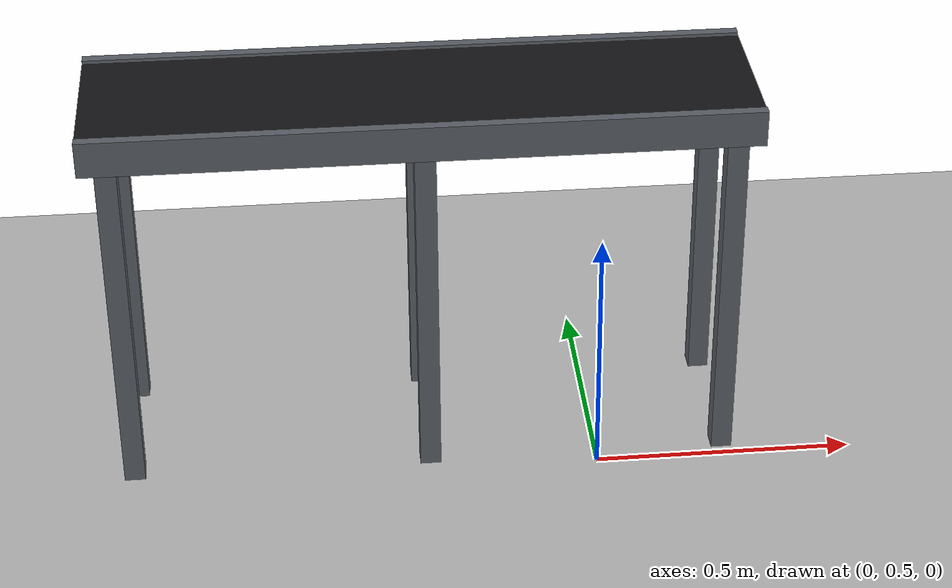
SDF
<sdf version="1.8">
 <world name="moz1_jerrycan">
  <model name="ground_plane">
   <static>true</static>
   <link name="link">
    <collision name="c"><geometry><plane><normal>0 0 1</normal><size>100 100</size></plane></geometry></collision>
    <visual name="v">
     <geometry><plane><normal>0 0 1</normal><size>100 100</size></plane></geometry>
     <material><ambient>0.7 0.7 0.7 1</ambient><diffuse>0.7 0.7 0.7 1</diffuse></material>
    </visual>
   </link>
  </model>
  <model name="conveyor_left">
   <static>true</static>
   <pose>-0.3250 0.6800 0.0000 0 0 0</pose>
   <link name="link">
    <collision name="c">
     <pose>0.0000 0.0000 0.3750 0 0 0</pose>
     <geometry><box><size>1.2500 0.3400 0.7500</size></box></geometry>
    </collision>
    <visual name="belt">
     <pose>0.0000 0.0000 0.7450 0 0 0</pose>
     <geometry><box><size>1.2500 0.3000 0.0100</size></box></geometry>
     <material><ambient>0.08 0.08 0.09 1</ambient><diffuse>0.08 0.08 0.09 1</diffuse></material>
    </visual>
    <visual name="rail_a">
     <pose>0.0000 0.1600 0.7200 0 0 0</pose>
     <geometry><box><size>1.2500 0.0200 0.0700</size></box></geometry>
     <material><ambient>0.35 0.37 0.40 1</ambient><diffuse>0.35 0.37 0.40 1</diffuse></material>
    </visual>
    <visual name="rail_b">
     <pose>0.0000 -0.1600 0.7200 0 0 0</pose>
     <geometry><box><size>1.2500 0.0200 0.0700</size></box></geometry>
     <material><ambient>0.35 0.37 0.40 1</ambient><diffuse>0.35 0.37 0.40 1</diffuse></material>
    </visual>
    <visual name="roller0">
     <pose>-0.5850 0.0000 0.7150 1.5708 0 0</pose>
     <geometry><cylinder><radius>0.02</radius><length>0.320</length></cylinder></geometry>
     <material><ambient>0.7 0.7 0.72 1</ambient><diffuse>0.7 0.7 0.72 1</diffuse></material>
    </visual>
    <visual name="roller1">
     <pose>-0.5050 0.0000 0.7150 1.5708 0 0</pose>
     <geometry><cylinder><radius>0.02</radius><length>0.320</length></cylinder></geometry>
     <material><ambient>0.7 0.7 0.72 1</ambient><diffuse>0.7 0.7 0.72 1</diffuse></material>
    </visual>
    <visual name="roller2">
     <pose>-0.4250 0.0000 0.7150 1.5708 0 0</pose>
     <geometry><cylinder><radius>0.02</radius><length>0.320</length></cylinder></geometry>
     <material><ambient>0.7 0.7 0.72 1</ambient><diffuse>0.7 0.7 0.72 1</diffuse></material>
    </visual>
    <visual name="roller3">
     <pose>-0.3450 0.0000 0.7150 1.5708 0 0</pose>
     <geometry><cylinder><radius>0.02</radius><length>0.320</length></cylinder></geometry>
     <material><ambient>0.7 0.7 0.72 1</ambient><diffuse>0.7 0.7 0.72 1</diffuse></material>
    </visual>
    <visual name="roller4">
     <pose>-0.2650 0.0000 0.7150 1.5708 0 0</pose>
     <geometry><cylinder><radius>0.02</radius><length>0.320</length></cylinder></geometry>
     <material><ambient>0.7 0.7 0.72 1</ambient><diffuse>0.7 0.7 0.72 1</diffuse></material>
    </visual>
    <visual name="roller5">
     <pose>-0.1850 0.0000 0.7150 1.5708 0 0</pose>
     <geometry><cylinder><radius>0.02</radius><length>0.320</length></cylinder></geometry>
     <material><ambient>0.7 0.7 0.72 1</ambient><diffuse>0.7 0.7 0.72 1</diffuse></material>
    </visual>
    <visual name="roller6">
     <pose>-0.1050 0.0000 0.7150 1.5708 0 0</pose>
     <geometry><cylinder><radius>0.02</radius><length>0.320</length></cylinder></geometry>
     <material><ambient>0.7 0.7 0.72 1</ambient><diffuse>0.7 0.7 0.72 1</diffuse></material>
    </visual>
    <visual name="roller7">
     <pose>-0.0250 0.0000 0.7150 1.5708 0 0</pose>
     <geometry><cylinder><radius>0.02</radius><length>0.320</length></cylinder></geometry>
     <material><ambient>0.7 0.7 0.72 1</ambient><diffuse>0.7 0.7 0.72 1</diffuse></material>
    </visual>
    <visual name="roller8">
     <pose>0.0550 0.0000 0.7150 1.5708 0 0</pose>
     <geometry><cylinder><radius>0.02</radius><length>0.320</length></cylinder></geometry>
     <material><ambient>0.7 0.7 0.72 1</ambient><diffuse>0.7 0.7 0.72 1</diffuse></material>
    </visual>
    <visual name="roller9">
     <pose>0.1350 0.0000 0.7150 1.5708 0 0</pose>
     <geometry><cylinder><radius>0.02</radius><length>0.320</length></cylinder></geometry>
     <material><ambient>0.7 0.7 0.72 1</ambient><diffuse>0.7 0.7 0.72 1</diffuse></material>
    </visual>
    <visual name="roller10">
     <pose>0.2150 0.0000 0.7150 1.5708 0 0</pose>
     <geometry><cylinder><radius>0.02</radius><length>0.320</length></cylinder></geometry>
     <material><ambient>0.7 0.7 0.72 1</ambient><diffuse>0.7 0.7 0.72 1</diffuse></material>
    </visual>
    <visual name="roller11">
     <pose>0.2950 0.0000 0.7150 1.5708 0 0</pose>
     <geometry><cylinder><radius>0.02</radius><length>0.320</length></cylinder></geometry>
     <material><ambient>0.7 0.7 0.72 1</ambient><diffuse>0.7 0.7 0.72 1</diffuse></material>
    </visual>
    <visual name="roller12">
     <pose>0.3750 0.0000 0.7150 1.5708 0 0</pose>
     <geometry><cylinder><radius>0.02</radius><length>0.320</length></cylinder></geometry>
     <material><ambient>0.7 0.7 0.72 1</ambient><diffuse>0.7 0.7 0.72 1</diffuse></material>
    </visual>
    <visual name="roller13">
     <pose>0.4550 0.0000 0.7150 1.5708 0 0</pose>
     <geometry><cylinder><radius>0.02</radius><length>0.320</length></cylinder></geometry>
     <material><ambient>0.7 0.7 0.72 1</ambient><diffuse>0.7 0.7 0.72 1</diffuse></material>
    </visual>
    <visual name="roller14">
     <pose>0.5350 0.0000 0.7150 1.5708 0 0</pose>
     <geometry><cylinder><radius>0.02</radius><length>0.320</length></cylinder></geometry>
     <material><ambient>0.7 0.7 0.72 1</ambient><diffuse>0.7 0.7 0.72 1</diffuse></material>
    </visual>
    <visual name="leg00">
     <pose>-0.5750 -0.1400 0.3450 0 0 0</pose>
     <geometry><box><size>0.0400 0.0400 0.6900</size></box></geometry>
     <material><ambient>0.35 0.37 0.40 1</ambient><diffuse>0.35 0.37 0.40 1</diffuse></material>
    </visual>
    <visual name="leg01">
     <pose>-0.5750 0.1400 0.3450 0 0 0</pose>
     <geometry><box><size>0.0400 0.0400 0.6900</size></box></geometry>
     <material><ambient>0.35 0.37 0.40 1</ambient><diffuse>0.35 0.37 0.40 1</diffuse></material>
    </visual>
    <visual name="leg10">
     <pose>0.0000 -0.1400 0.3450 0 0 0</pose>
     <geometry><box><size>0.0400 0.0400 0.6900</size></box></geometry>
     <material><ambient>0.35 0.37 0.40 1</ambient><diffuse>0.35 0.37 0.40 1</diffuse></material>
    </visual>
    <visual name="leg11">
     <pose>0.0000 0.1400 0.3450 0 0 0</pose>
     <geometry><box><size>0.0400 0.0400 0.6900</size></box></geometry>
     <material><ambient>0.35 0.37 0.40 1</ambient><diffuse>0.35 0.37 0.40 1</diffuse></material>
    </visual>
    <visual name="leg20">
     <pose>0.5750 -0.1400 0.3450 0 0 0</pose>
     <geometry><box><size>0.0400 0.0400 0.6900</size></box></geometry>
     <material><ambient>0.35 0.37 0.40 1</ambient><diffuse>0.35 0.37 0.40 1</diffuse></material>
    </visual>
    <visual name="leg21">
     <pose>0.5750 0.1400 0.3450 0 0 0</pose>
     <geometry><box><size>0.0400 0.0400 0.6900</size></box></geometry>
     <material><ambient>0.35 0.37 0.40 1</ambient><diffuse>0.35 0.37 0.40 1</diffuse></material>
    </visual>
   </link>
  </model>
 </world>
</sdf>
